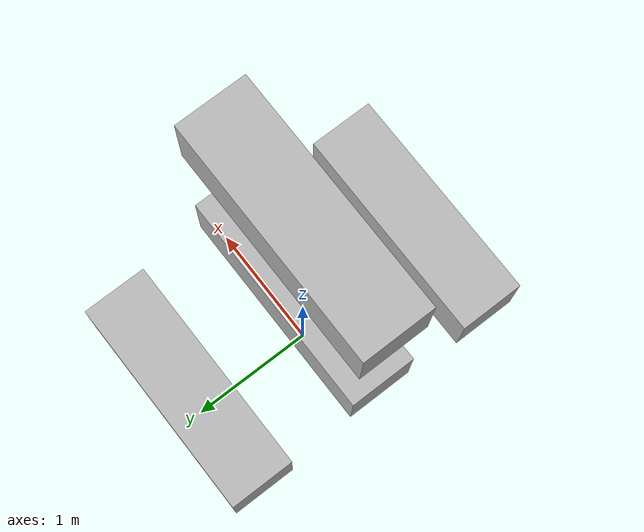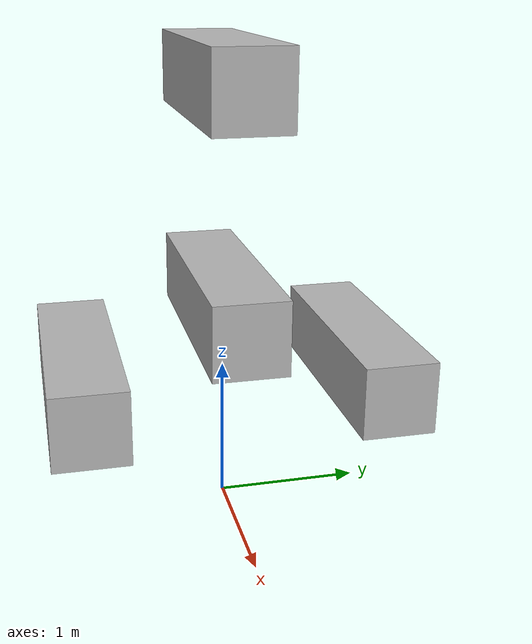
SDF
<?xml version="1.0"?>
<sdf version="1.4">
    <model name="column">
        <static>true</static>
        <link name="column_left">
            <collision name="column_collision">
                <pose>0 -1 1 0 0 0</pose>
                <geometry>
                    <box>
                        <size>1.7 0.5 0.5</size>
                    </box>
                </geometry>
            </collision>

            <visual name="visual">
                <pose>0 -1 1 0 0 0</pose>
                <geometry>
                    <box>
                        <size>1.7 0.5 0.5</size>
                    </box>
                </geometry>
            </visual>
        </link>
        <link name="column_right">
            <collision name="column_collision">
                <pose>0 1 1 0 0 0</pose>
                <geometry>
                    <box>
                        <size>1.7 0.5 0.5</size>
                    </box>
                </geometry>
            </collision>

            <visual name="visual">
                <pose>0 1 1 0 0 0</pose>
                <geometry>
                    <box>
                        <size>1.7 0.5 0.5</size>
                    </box>
                </geometry>
            </visual>
        </link>
        <link name="column_bottom">
            <collision name="column_collision">
                <pose>0 0 1.5 0 0 0</pose>
                <geometry>
                    <box>
                        <size>1.7 0.5 0.5</size>
                    </box>
                </geometry>
            </collision>

            <visual name="visual">
                <pose>0 0 1.5 0 0 0</pose>
                <geometry>
                    <box>
                        <size>1.7 0.5 0.5</size>
                    </box>
                </geometry>
            </visual>
        </link>
        <link name="column_top">
            <collision name="column_collision">
                <pose>0 0 3 0 0 0</pose>
                <geometry>
                    <box>
                        <size>1.7 0.5 0.5</size>
                    </box>
                </geometry>
            </collision>

            <visual name="visual">
                <pose>0 0 3 0 0 0</pose>
                <geometry>
                    <box>
                        <size>1.7 0.5 0.5</size>
                    </box>
                </geometry>
            </visual>
        </link>
    </model>
</sdf>
